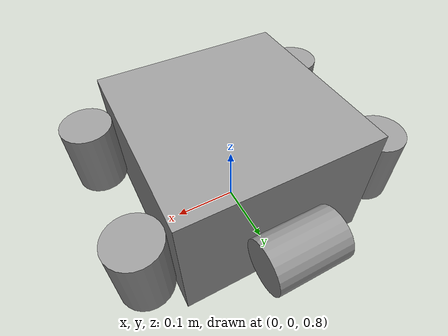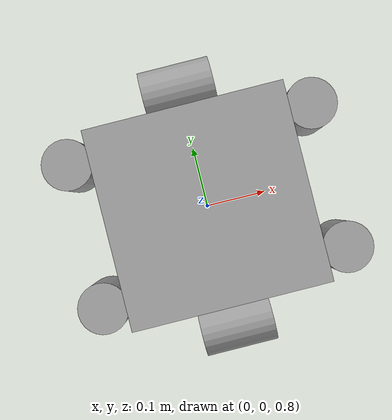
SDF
<?xml version="1.0" ?>
<sdf version="1.7">
  <world name="uuv_simple">
    <scene>
      <!-- For turquoise ambient -->
      <ambient>0.0 1.0 1.0</ambient>
      <background>0.0 0.7 0.8</background>
    </scene>

    <physics name="1ms" type="ode">
      <solver>
        <type>quick</type>
        <iters>1000</iters>
        <precon_iters>0</precon_iters>
        <sor>1.3</sor>
        <use_dynamic_moi_rescaling>1</use_dynamic_moi_rescaling>
        <min_step_size>0.0001</min_step_size>
        <mg_levels>3</mg_levels>
        <monitor_condition>0</monitor_condition>
        <contact_surface_layer>0.001</contact_surface_layer>
        <warm_start_factor>0.8</warm_start_factor>
        <secondary_lcp_solver>pgs</secondary_lcp_solver>
      </solver>
      <constraints>
        <cfm>0.0</cfm>
        <erp>0.2</erp>
        <contact_max_correcting_vel>100.0</contact_max_correcting_vel>
        <contact_surface_layer>0.001</contact_surface_layer>
      </constraints>
      <max_step_size>0.0001</max_step_size>
      <real_time_factor>1.0</real_time_factor>
    </physics>
    <plugin
      filename="ignition-gazebo-physics-system"
      name="ignition::gazebo::systems::Physics">
    </plugin>
    <plugin
      filename="ignition-gazebo-user-commands-system"
      name="ignition::gazebo::systems::UserCommands">
    </plugin>
    <plugin
      filename="ignition-gazebo-scene-broadcaster-system"
      name="ignition::gazebo::systems::SceneBroadcaster">
    </plugin>

    <plugin
      filename="ignition-gazebo-buoyancy-system"
      name="ignition::gazebo::systems::Buoyancy">
      <uniform_fluid_density>1000</uniform_fluid_density>
    </plugin>

    <light type="directional" name="sun">
      <cast_shadows>true</cast_shadows>
      <pose>0 0 10 0 0 0</pose>
      <diffuse>1 1 1 1</diffuse>
      <specular>0.5 0.5 0.5 1</specular>
      <attenuation>
        <range>1000</range>
        <constant>0.9</constant>
        <linear>0.01</linear>
        <quadratic>0.001</quadratic>
      </attenuation>
      <direction>-0.5 0.1 -0.9</direction>
    </light>

    <include >
        <plugin filename="libignition-gazebo-pose-publisher-system.so"
        name="ignition::gazebo::systems::PosePublisher">
        <publish_link_pose>true</publish_link_pose>
        <use_pose_vector_msg>true</use_pose_vector_msg>
        <publish_nested_model_pose>true</publish_nested_model_pose>
        <static_publisher>true</static_publisher>
        <static_update_frequency>100</static_update_frequency>
      </plugin>
        <pose>0 0 1 0 0 0</pose>
        <uri>file://home/felsager/Workspaces/uuv_ws/src/model_generator/models/rov_model_1/rov_model_1.sdf</uri>
        <plugin
            filename="ignition-gazebo-thruster-system"
            name="ignition::gazebo::systems::Thruster">
            <namespace>rov_starting_point</namespace>
            <joint_name>box_thruster_up_neg_right</joint_name>
            <thrust_coefficient>0.004422</thrust_coefficient>
            <fluid_density>1000</fluid_density>
            <propeller_diameter>0.078</propeller_diameter>
        </plugin>

        <plugin
            filename="ignition-gazebo-thruster-system"
            name="ignition::gazebo::systems::Thruster">
            <namespace>rov_starting_point</namespace>
            <joint_name>box_thruster_side_pos</joint_name>
            <thrust_coefficient>0.004422</thrust_coefficient>
            <fluid_density>1000</fluid_density>
            <propeller_diameter>0.078</propeller_diameter>
        </plugin>
        <plugin
            filename="ignition-gazebo-thruster-system"
            name="ignition::gazebo::systems::Thruster">
            <namespace>rov_starting_point</namespace>
            <joint_name>box_thruster_side_neg</joint_name>
            <thrust_coefficient>0.004422</thrust_coefficient>
            <fluid_density>1000</fluid_density>
            <propeller_diameter>0.078</propeller_diameter>
        </plugin>
        <plugin
            filename="ignition-gazebo-thruster-system"
            name="ignition::gazebo::systems::Thruster">
            <namespace>rov_starting_point</namespace>
            <joint_name>box_thruster_up_pos_left</joint_name>
            <thrust_coefficient>0.004422</thrust_coefficient>
            <fluid_density>1000</fluid_density>
            <propeller_diameter>0.078</propeller_diameter>
        </plugin>
        <plugin
            filename="ignition-gazebo-thruster-system"
            name="ignition::gazebo::systems::Thruster">
            <namespace>rov_starting_point</namespace>
            <joint_name>box_thruster_up_pos_right</joint_name>
            <thrust_coefficient>0.004422</thrust_coefficient>
            <fluid_density>1000</fluid_density>
            <propeller_diameter>0.078</propeller_diameter>
        </plugin>
        <plugin
            filename="ignition-gazebo-thruster-system"
            name="ignition::gazebo::systems::Thruster">
            <namespace>rov_starting_point</namespace>
            <joint_name>box_thruster_up_neg_left</joint_name>
            <thrust_coefficient>0.004422</thrust_coefficient>
            <fluid_density>1000</fluid_density>
            <propeller_diameter>0.078</propeller_diameter>
        </plugin>
        <plugin
            filename="ignition-gazebo-hydrodynamics-system"
            name="ignition::gazebo::systems::Hydrodynamics">
                <link_name>box_body</link_name>
                    <xDotU>9</xDotU>
                    <yDotV>9</yDotV>
                    <zDotW>2.7</zDotW>
                    <kDotP>0.02</kDotP>
                    <mDotQ>0.02</mDotQ>
                    <nDotR>0.02</nDotR>
                    <xU>-9</xU>
                    <yV>-9</yV>
                    <zW>-9</zW>
                    <kP>-0.24</kP>
                    <mQ>-0.24</mQ>
                    <nR>-0.24</nR>
                    <xUU>-2.7</xUU>
                    <yVV>-2.7</yVV>
                    <zWW>-2.7</zWW>
                    <kPP>-5</kPP>
                    <mQQ>-5</mQQ>
                    <nRR>-5</nRR>
            </plugin>
    </include>

  </world>
</sdf>

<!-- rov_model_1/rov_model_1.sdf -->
<sdf version='1.7'>
  <model name='rov_starting_point'>
    <link name='box_body'>
      <inertial>
        <mass>17.4</mass>
        <inertia>
          <ixx>0.18849999999999997</ixx>
          <ixy>0</ixy>
          <ixz>0</ixz>
          <iyy>0.18849999999999997</iyy>
          <iyz>0</iyz>
          <izz>0.26099999999999995</izz>
        </inertia>
        <pose>0 0 0 0 -0 0</pose>
      </inertial>
      <self_collide>0</self_collide>
      <enable_wind>0</enable_wind>
      <kinematic>0</kinematic>
      <pose>0 0 -0.1 0 -0 0</pose>
      <gravity>1</gravity>
      <visual name='visual'>
        <geometry>
          <box>
            <size>0.3 0.3 0.2</size>
          </box>
        </geometry>
        <material>
          <script>
            <name>Gazebo/Grey</name>
            <uri>file://media/materials/scripts/gazebo.material</uri>
          </script>
          <shader type='pixel'>
            <normal_map>__default__</normal_map>
          </shader>
          <ambient>0.3 0.3 0.3 1</ambient>
          <diffuse>0.7 0.7 0.7 1</diffuse>
          <specular>0.01 0.01 0.01 1</specular>
          <emissive>0 0 0 1</emissive>
        </material>
        <pose>0 0 0 0 -0 0</pose>
        <transparency>0</transparency>
        <cast_shadows>1</cast_shadows>
      </visual>
      <collision name='collision'>
        <laser_retro>0</laser_retro>
        <max_contacts>10</max_contacts>
        <pose>0 0 0 0 -0 0</pose>
        <geometry>
          <box>
            <size>0.3 0.3 0.2</size>
          </box>
        </geometry>
        <surface>
          <friction>
            <ode>
              <mu>1</mu>
              <mu2>1</mu2>
              <fdir1>0 0 0</fdir1>
              <slip1>0</slip1>
              <slip2>0</slip2>
            </ode>
            <torsional>
              <coefficient>1</coefficient>
              <patch_radius>0</patch_radius>
              <surface_radius>0</surface_radius>
              <use_patch_radius>1</use_patch_radius>
              <ode>
                <slip>0</slip>
              </ode>
            </torsional>
          </friction>
          <bounce>
            <restitution_coefficient>0</restitution_coefficient>
            <threshold>1e+06</threshold>
          </bounce>
          <contact>
            <collide_without_contact>0</collide_without_contact>
            <collide_without_contact_bitmask>1</collide_without_contact_bitmask>
            <collide_bitmask>1</collide_bitmask>
            <ode>
              <soft_cfm>0</soft_cfm>
              <soft_erp>0.2</soft_erp>
              <kp>1e+13</kp>
              <kd>1</kd>
              <max_vel>0.01</max_vel>
              <min_depth>0</min_depth>
            </ode>
            <bullet>
              <split_impulse>1</split_impulse>
              <split_impulse_penetration_threshold>-0.01</split_impulse_penetration_threshold>
              <soft_cfm>0</soft_cfm>
              <soft_erp>0.2</soft_erp>
              <kp>1e+13</kp>
              <kd>1</kd>
            </bullet>
          </contact>
        </surface>
      </collision>
    </link>
    <link name='thruster_side_pos'>
      <inertial>
        <mass>0.1</mass>
        <inertia>
          <ixx>76e-6</ixx>
          <ixy>0</ixy>
          <ixz>0</ixz>
          <iyy>1</iyy>
          <iyz>0</iyz>
          <izz>1</izz>
        </inertia>
        <pose>0 0 0 0 -0 0</pose>
      </inertial>
      <pose>-0 0.189 -0.1 1.57081 1.57079 1.57081</pose>
      <gravity>1</gravity>
      <self_collide>0</self_collide>
      <kinematic>0</kinematic>
      <enable_wind>0</enable_wind>
      <visual name='visual'>
        <pose>0 0 0 0 -0 0</pose>
        <geometry>
          <cylinder>
            <radius>0.039</radius>
            <length>0.112</length>
          </cylinder>
        </geometry>
        <material>
          <lighting>1</lighting>
          <script>
            <uri>file://media/materials/scripts/gazebo.material</uri>
            <name>Gazebo/Grey</name>
          </script>
          <shader type='pixel'>
            <normal_map>__default__</normal_map>
          </shader>
          <ambient>0.3 0.3 0.3 1</ambient>
          <diffuse>0.7 0.7 0.7 1</diffuse>
          <specular>0.01 0.01 0.01 1</specular>
          <emissive>0 0 0 1</emissive>
        </material>
        <transparency>0</transparency>
        <cast_shadows>1</cast_shadows>
      </visual>

    </link>
    <link name='thruster_side_neg'>
      <inertial>
        <mass>0.1</mass>
        <inertia>
          <ixx>76e-6</ixx>
          <ixy>0</ixy>
          <ixz>0</ixz>
          <iyy>1</iyy>
          <iyz>0</iyz>
          <izz>1</izz>
        </inertia>
        <pose>0 0 0 0 -0 0</pose>
      </inertial>
      <pose>-0 -0.189 -0.1 1.5708 1.57078 1.5708</pose>
      <gravity>1</gravity>
      <self_collide>0</self_collide>
      <kinematic>0</kinematic>
      <enable_wind>0</enable_wind>
      <visual name='visual'>
        <pose>0 0 0 0 -0 0</pose>
        <geometry>
          <cylinder>
            <radius>0.039</radius>
            <length>0.112</length>
          </cylinder>
        </geometry>
        <material>
          <lighting>1</lighting>
          <script>
            <uri>file://media/materials/scripts/gazebo.material</uri>
            <name>Gazebo/Grey</name>
          </script>
          <shader type='pixel'>
            <normal_map>__default__</normal_map>
          </shader>
          <ambient>0.3 0.3 0.3 1</ambient>
          <diffuse>0.7 0.7 0.7 1</diffuse>
          <specular>0.01 0.01 0.01 1</specular>
          <emissive>0 0 0 1</emissive>
        </material>
        <transparency>0</transparency>
        <cast_shadows>1</cast_shadows>
      </visual>

    </link>
    <link name='thruster_up_pos_left'>
      <inertial>
        <mass>0.1</mass>
        <inertia>
          <ixx>76e-6</ixx>
          <ixy>0</ixy>
          <ixz>0</ixz>
          <iyy>1</iyy>
          <iyz>0</iyz>
          <izz>1</izz>
        </inertia>
        <pose>0 0 0 0 -0 0</pose>
      </inertial>
      <pose>0.189 0.11099999999999999 -0.1 0 -0 0</pose>
      <gravity>1</gravity>
      <self_collide>0</self_collide>
      <kinematic>0</kinematic>
      <enable_wind>0</enable_wind>
      <visual name='visual'>
        <pose>0 0 0 0 -0 0</pose>
        <geometry>
          <cylinder>
            <radius>0.039</radius>
            <length>0.112</length>
          </cylinder>
        </geometry>
        <material>
          <lighting>1</lighting>
          <script>
            <uri>file://media/materials/scripts/gazebo.material</uri>
            <name>Gazebo/Grey</name>
          </script>
          <shader type='pixel'>
            <normal_map>__default__</normal_map>
          </shader>
          <ambient>0.3 0.3 0.3 1</ambient>
          <diffuse>0.7 0.7 0.7 1</diffuse>
          <specular>0.01 0.01 0.01 1</specular>
          <emissive>0 0 0 1</emissive>
        </material>
        <transparency>0</transparency>
        <cast_shadows>1</cast_shadows>
      </visual>

    </link>
    <link name='thruster_up_neg_right'>
      <inertial>
        <mass>0.1</mass>
        <inertia>
          <ixx>76e-6</ixx>
          <ixy>0</ixy>
          <ixz>0</ixz>
          <iyy>1</iyy>
          <iyz>0</iyz>
          <izz>1</izz>
        </inertia>
        <pose>0 0 0 0 -0 0</pose>
      </inertial>
      <pose>-0.189 -0.11099999999999999 -0.1 0 -0 0</pose>
      <gravity>1</gravity>
      <self_collide>0</self_collide>
      <kinematic>0</kinematic>
      <enable_wind>0</enable_wind>
      <visual name='visual'>
        <pose>0 0 0 0 -0 0</pose>
        <geometry>
          <cylinder>
            <radius>0.039</radius>
            <length>0.112</length>
          </cylinder>
        </geometry>
        <material>
          <lighting>1</lighting>
          <script>
            <uri>file://media/materials/scripts/gazebo.material</uri>
            <name>Gazebo/Grey</name>
          </script>
          <shader type='pixel'>
            <normal_map>__default__</normal_map>
          </shader>
          <ambient>0.3 0.3 0.3 1</ambient>
          <diffuse>0.7 0.7 0.7 1</diffuse>
          <specular>0.01 0.01 0.01 1</specular>
          <emissive>0 0 0 1</emissive>
        </material>
        <transparency>0</transparency>
        <cast_shadows>1</cast_shadows>
      </visual>

    </link>
    <link name='thruster_up_pos_right'>
      <inertial>
        <mass>0.1</mass>
        <inertia>
          <ixx>76e-6</ixx>
          <ixy>0</ixy>
          <ixz>0</ixz>
          <iyy>1</iyy>
          <iyz>0</iyz>
          <izz>1</izz>
        </inertia>
        <pose>0 0 0 0 -0 0</pose>
      </inertial>
      <pose>0.189 -0.11099999999999999 -0.1 0 -0 0</pose>
      <gravity>1</gravity>
      <self_collide>0</self_collide>
      <kinematic>0</kinematic>
      <enable_wind>0</enable_wind>
      <visual name='visual'>
        <pose>0 0 0 0 -0 0</pose>
        <geometry>
          <cylinder>
            <radius>0.039</radius>
            <length>0.112</length>
          </cylinder>
        </geometry>
        <material>
          <lighting>1</lighting>
          <script>
            <uri>file://media/materials/scripts/gazebo.material</uri>
            <name>Gazebo/Grey</name>
          </script>
          <shader type='pixel'>
            <normal_map>__default__</normal_map>
          </shader>
          <ambient>0.3 0.3 0.3 1</ambient>
          <diffuse>0.7 0.7 0.7 1</diffuse>
          <specular>0.01 0.01 0.01 1</specular>
          <emissive>0 0 0 1</emissive>
        </material>
        <transparency>0</transparency>
        <cast_shadows>1</cast_shadows>
      </visual>

    </link>
    <link name='thruster_up_neg_left'>
      <inertial>
        <mass>0.1</mass>
        <inertia>
          <ixx>76e-6</ixx>
          <ixy>0</ixy>
          <ixz>0</ixz>
          <iyy>1</iyy>
          <iyz>0</iyz>
          <izz>1</izz>
        </inertia>
        <pose>0 0 0 0 -0 0</pose>
      </inertial>
      <pose>-0.189 0.11099999999999999 -0.1 0 -0 0</pose>
      <gravity>1</gravity>
      <self_collide>0</self_collide>
      <kinematic>0</kinematic>
      <enable_wind>0</enable_wind>
      <visual name='visual'>
        <pose>0 0 0 0 -0 0</pose>
        <geometry>
          <cylinder>
            <radius>0.039</radius>
            <length>0.112</length>
          </cylinder>
        </geometry>
        <material>
          <lighting>1</lighting>
          <script>
            <uri>file://media/materials/scripts/gazebo.material</uri>
            <name>Gazebo/Grey</name>
          </script>
          <shader type='pixel'>
            <normal_map>__default__</normal_map>
          </shader>
          <ambient>0.3 0.3 0.3 1</ambient>
          <diffuse>0.7 0.7 0.7 1</diffuse>
          <specular>0.01 0.01 0.01 1</specular>
          <emissive>0 0 0 1</emissive>
        </material>
        <transparency>0</transparency>
        <cast_shadows>1</cast_shadows>
      </visual>

    </link>
    <joint name='box_thruster_side_pos' type='revolute'>
      <parent>box_body</parent>
      <child>thruster_side_pos</child>
      <pose>0 0 0 0 -0 0</pose>
      <axis>
        <xyz>0 0 1</xyz>
        <limit>
            <lower>-1e+12</lower>
            <upper>1e+12</upper>
            <effort>-1</effort>
            <velocity>5</velocity>
        </limit>
      </axis>
    </joint>
    <joint name='box_thruster_side_neg' type='revolute'>
      <parent>box_body</parent>
      <child>thruster_side_neg</child>
      <pose>0 0 0 0 -0 0</pose>
      <axis>
        <xyz>0 0 1</xyz>
        <limit>
            <lower>-1e+12</lower>
            <upper>1e+12</upper>
            <effort>-1</effort>
            <velocity>5</velocity>
        </limit>
      </axis>
    </joint>
    <joint name='box_thruster_up_pos_left' type='revolute'>
      <parent>box_body</parent>
      <child>thruster_up_pos_left</child>
      <pose>0 0 0 0 -0 0</pose>
      <axis>
        <xyz>0 0 1</xyz>
        <limit>
            <lower>-1e+12</lower>
            <upper>1e+12</upper>
            <effort>-1</effort>
            <velocity>5</velocity>
        </limit>
      </axis>
    </joint>
    <joint name='box_thruster_up_pos_right' type='revolute'>
      <parent>box_body</parent>
      <child>thruster_up_pos_right</child>
      <pose>0 0 0 0 -0 0</pose>
      <axis>
        <xyz>0 0 1</xyz>
        <limit>
            <lower>-1e+12</lower>
            <upper>1e+12</upper>
            <effort>-1</effort>
            <velocity>5</velocity>
        </limit>
      </axis>
    </joint>
    <joint name='box_thruster_up_neg_left' type='revolute'>
      <parent>box_body</parent>
      <child>thruster_up_neg_left</child>
      <pose>0 0 0 0 -0 0</pose>
      <axis>
        <xyz>0 0 1</xyz>
        <limit>
            <lower>-1e+12</lower>
            <upper>1e+12</upper>
            <effort>-1</effort>
            <velocity>5</velocity>
        </limit>
      </axis>
    </joint>
    <joint name='box_thruster_up_neg_right' type='revolute'>
      <parent>box_body</parent>
      <child>thruster_up_neg_right</child>
      <pose>0 0 0 0 -0 0</pose>
      <axis>
        <xyz>0 0 1</xyz>
        <limit>
            <lower>-1e+12</lower>
            <upper>1e+12</upper>
            <effort>-1</effort>
            <velocity>5</velocity>
        </limit>
      </axis>
    </joint>
    <static>0</static>
    <allow_auto_disable>1</allow_auto_disable>
  </model>
</sdf>
